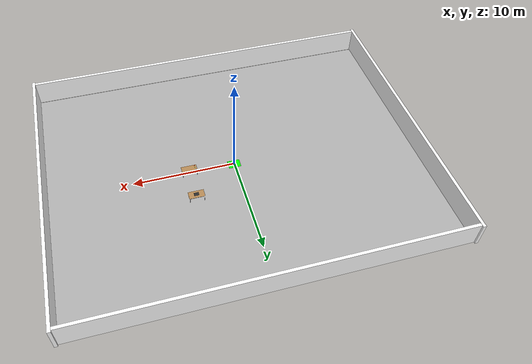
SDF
<sdf version="1.7">
 <world name="warehouse">
  <plugin filename="ignition-gazebo-physics-system" name="ignition::gazebo::systems::Physics"/>
  <plugin filename="ignition-gazebo-user-commands-system" name="ignition::gazebo::systems::UserCommands"/>
  <plugin filename="ignition-gazebo-scene-broadcaster-system" name="ignition::gazebo::systems::SceneBroadcaster"/>
  <plugin filename="ignition-gazebo-sensors-system" name="ignition::gazebo::systems::Sensors">
   <render_engine>ogre2</render_engine>
  </plugin>
  <scene>
   <ambient>0.50 0.50 0.50 1.0</ambient>
   <background>0.32 0.36 0.42 1.0</background>
   <shadows>true</shadows>
  </scene>
  <light type="directional" name="warehouse_key_light">
   <pose>0 0 18 0 0 0</pose>
   <diffuse>0.80 0.80 0.78 1.0</diffuse>
   <specular>0.10 0.10 0.10 1.0</specular>
   <direction>-0.30 0.20 -1.0</direction>
   <intensity>0.80</intensity>
  </light>
  <light type="directional" name="warehouse_fill_light">
   <pose>12 -10 14 0 0 0</pose>
   <diffuse>0.45 0.45 0.50 1.0</diffuse>
   <specular>0.05 0.05 0.05 1.0</specular>
   <direction>-0.55 0.45 -1.0</direction>
   <intensity>0.40</intensity>
  </light>
  <light type="point" name="pick_workbench_light">
   <pose>4.5 0.0 3.4 0 0 0</pose>
   <diffuse>0.90 0.90 0.85 1.0</diffuse>
   <specular>0.20 0.20 0.20 1.0</specular>
   <attenuation>0.0 0.55 0.08</attenuation>
   <intensity>0.90</intensity>
  </light>
  <light type="point" name="drop_off_table_light">
   <pose>4.5 3.2 3.4 0 0 0</pose>
   <diffuse>0.90 0.90 0.85 1.0</diffuse>
   <specular>0.20 0.20 0.20 1.0</specular>
   <attenuation>0.0 0.55 0.08</attenuation>
   <intensity>0.90</intensity>
  </light>
  <physics type="ode">
   <max_step_size>0.002</max_step_size>
   <real_time_factor>1.0</real_time_factor>
   <real_time_update_rate>500</real_time_update_rate>
  </physics>
  <model name="warehouse_slab">
   <static>true</static>
   <pose>0 0 -0.15 0 0 0</pose>
   <link name="slab">
    <collision name="slab_collision">
     <geometry><box><size>36.0 28.0 0.3</size></box></geometry>
     <surface><friction><ode><mu>0.9</mu><mu2>0.9</mu2></ode></friction></surface>
    </collision>
    <visual name="slab_visual">
     <geometry><box><size>36.0 28.0 0.3</size></box></geometry>
     <material>
      <ambient>0.3 0.3 0.3 1</ambient>
      <diffuse>0.7 0.7 0.7 1</diffuse>
      <specular>0.01 0.01 0.01 1</specular>
     </material>
    </visual>
   </link>
  </model>
  <model name="north_wall">
   <static>true</static>
   <link name="wall">
    <collision name="collision"><geometry><box><size>36.0 0.3 2.5</size></box></geometry></collision>
    <visual name="visual">
     <geometry><box><size>36.0 0.3 2.5</size></box></geometry>
     <material><ambient>1 1 1 1</ambient><diffuse>1 1 1 1</diffuse><specular>0.1 0.1 0.1 1</specular></material>
    </visual>
   </link>
   <pose>0 -14.2 1.25 0 0 0</pose>
  </model>
  <model name="south_wall">
   <static>true</static>
   <link name="wall">
    <collision name="collision"><geometry><box><size>36.0 0.3 2.5</size></box></geometry></collision>
    <visual name="visual">
     <geometry><box><size>36.0 0.3 2.5</size></box></geometry>
     <material><ambient>1 1 1 1</ambient><diffuse>1 1 1 1</diffuse><specular>0.1 0.1 0.1 1</specular></material>
    </visual>
   </link>
   <pose>0 14.2 1.25 0 0 0</pose>
  </model>
  <model name="west_wall">
   <static>true</static>
   <link name="wall">
    <collision name="collision"><geometry><box><size>0.3 29.0 2.5</size></box></geometry></collision>
    <visual name="visual">
     <geometry><box><size>0.3 29.0 2.5</size></box></geometry>
     <material><ambient>1 1 1 1</ambient><diffuse>1 1 1 1</diffuse><specular>0.1 0.1 0.1 1</specular></material>
    </visual>
   </link>
   <pose>-18.15 0 1.25 0 0 0</pose>
  </model>
  <model name="east_wall">
   <static>true</static>
   <link name="wall">
    <collision name="collision"><geometry><box><size>0.3 29.0 2.5</size></box></geometry></collision>
    <visual name="visual">
     <geometry><box><size>0.3 29.0 2.5</size></box></geometry>
     <material><ambient>1 1 1 1</ambient><diffuse>1 1 1 1</diffuse><specular>0.1 0.1 0.1 1</specular></material>
    </visual>
   </link>
   <pose>18.15 0 1.25 0 0 0</pose>
  </model>
  <model name="pick_workbench">
   <static>true</static>
   <pose>4.5 0 0 0 0 0</pose>
   <link name="link">
    <collision name="surface">
     <pose>0 0 0.585 0 0 0</pose>
     <geometry><box><size>1.5 0.8 0.03</size></box></geometry>
     <surface><friction><ode><mu>1.0</mu><mu2>1.0</mu2></ode></friction></surface>
    </collision>
    <visual name="surface_visual">
     <pose>0 0 0.585 0 0 0</pose>
     <geometry><box><size>1.5 0.8 0.03</size></box></geometry>
     <material>
      <ambient>0.42 0.31 0.19 1</ambient>
      <diffuse>0.72 0.55 0.34 1</diffuse>
      <specular>0.08 0.08 0.08 1</specular>
     </material>
    </visual>
    <collision name="front_left_leg">
     <pose>0.68 0.38 0.285 0 0 0</pose>
     <geometry><cylinder><radius>0.02</radius><length>0.57</length></cylinder></geometry>
    </collision>
    <visual name="front_left_leg_visual">
     <pose>0.68 0.38 0.285 0 0 0</pose>
     <geometry><cylinder><radius>0.02</radius><length>0.57</length></cylinder></geometry>
     <material>
      <ambient>0.22 0.22 0.24 1</ambient>
      <diffuse>0.45 0.46 0.50 1</diffuse>
      <specular>0.25 0.25 0.25 1</specular>
     </material>
    </visual>
    <collision name="front_right_leg">
     <pose>0.68 -0.38 0.285 0 0 0</pose>
     <geometry><cylinder><radius>0.02</radius><length>0.57</length></cylinder></geometry>
    </collision>
    <visual name="front_right_leg_visual">
     <pose>0.68 -0.38 0.285 0 0 0</pose>
     <geometry><cylinder><radius>0.02</radius><length>0.57</length></cylinder></geometry>
     <material>
      <ambient>0.22 0.22 0.24 1</ambient>
      <diffuse>0.45 0.46 0.50 1</diffuse>
      <specular>0.25 0.25 0.25 1</specular>
     </material>
    </visual>
    <collision name="back_left_leg">
     <pose>-0.68 0.38 0.285 0 0 0</pose>
     <geometry><cylinder><radius>0.02</radius><length>0.57</length></cylinder></geometry>
    </collision>
    <visual name="back_left_leg_visual">
     <pose>-0.68 0.38 0.285 0 0 0</pose>
     <geometry><cylinder><radius>0.02</radius><length>0.57</length></cylinder></geometry>
     <material>
      <ambient>0.22 0.22 0.24 1</ambient>
      <diffuse>0.45 0.46 0.50 1</diffuse>
      <specular>0.25 0.25 0.25 1</specular>
     </material>
    </visual>
    <collision name="back_right_leg">
     <pose>-0.68 -0.38 0.285 0 0 0</pose>
     <geometry><cylinder><radius>0.02</radius><length>0.57</length></cylinder></geometry>
    </collision>
    <visual name="back_right_leg_visual">
     <pose>-0.68 -0.38 0.285 0 0 0</pose>
     <geometry><cylinder><radius>0.02</radius><length>0.57</length></cylinder></geometry>
     <material>
      <ambient>0.22 0.22 0.24 1</ambient>
      <diffuse>0.45 0.46 0.50 1</diffuse>
      <specular>0.25 0.25 0.25 1</specular>
     </material>
    </visual>
   </link>
  </model>
  <model name="drop_off_table">
   <static>true</static>
   <pose>4.5 3.2 0 0 0 0</pose>
   <link name="link">
    <collision name="surface">
     <pose>0 0 0.585 0 0 0</pose>
     <geometry><box><size>1.5 0.8 0.03</size></box></geometry>
     <surface><friction><ode><mu>1.0</mu><mu2>1.0</mu2></ode></friction></surface>
    </collision>
    <visual name="surface_visual">
     <pose>0 0 0.585 0 0 0</pose>
     <geometry><box><size>1.5 0.8 0.03</size></box></geometry>
     <material>
      <ambient>0.42 0.31 0.19 1</ambient>
      <diffuse>0.72 0.55 0.34 1</diffuse>
      <specular>0.08 0.08 0.08 1</specular>
     </material>
    </visual>
    <collision name="front_left_leg">
     <pose>0.68 0.38 0.285 0 0 0</pose>
     <geometry><cylinder><radius>0.02</radius><length>0.57</length></cylinder></geometry>
    </collision>
    <visual name="front_left_leg_visual">
     <pose>0.68 0.38 0.285 0 0 0</pose>
     <geometry><cylinder><radius>0.02</radius><length>0.57</length></cylinder></geometry>
     <material>
      <ambient>0.22 0.22 0.24 1</ambient>
      <diffuse>0.45 0.46 0.50 1</diffuse>
      <specular>0.25 0.25 0.25 1</specular>
     </material>
    </visual>
    <collision name="front_right_leg">
     <pose>0.68 -0.38 0.285 0 0 0</pose>
     <geometry><cylinder><radius>0.02</radius><length>0.57</length></cylinder></geometry>
    </collision>
    <visual name="front_right_leg_visual">
     <pose>0.68 -0.38 0.285 0 0 0</pose>
     <geometry><cylinder><radius>0.02</radius><length>0.57</length></cylinder></geometry>
     <material>
      <ambient>0.22 0.22 0.24 1</ambient>
      <diffuse>0.45 0.46 0.50 1</diffuse>
      <specular>0.25 0.25 0.25 1</specular>
     </material>
    </visual>
    <collision name="back_left_leg">
     <pose>-0.68 0.38 0.285 0 0 0</pose>
     <geometry><cylinder><radius>0.02</radius><length>0.57</length></cylinder></geometry>
    </collision>
    <visual name="back_left_leg_visual">
     <pose>-0.68 0.38 0.285 0 0 0</pose>
     <geometry><cylinder><radius>0.02</radius><length>0.57</length></cylinder></geometry>
     <material>
      <ambient>0.22 0.22 0.24 1</ambient>
      <diffuse>0.45 0.46 0.50 1</diffuse>
      <specular>0.25 0.25 0.25 1</specular>
     </material>
    </visual>
    <collision name="back_right_leg">
     <pose>-0.68 -0.38 0.285 0 0 0</pose>
     <geometry><cylinder><radius>0.02</radius><length>0.57</length></cylinder></geometry>
    </collision>
    <visual name="back_right_leg_visual">
     <pose>-0.68 -0.38 0.285 0 0 0</pose>
     <geometry><cylinder><radius>0.02</radius><length>0.57</length></cylinder></geometry>
     <material>
      <ambient>0.22 0.22 0.24 1</ambient>
      <diffuse>0.45 0.46 0.50 1</diffuse>
      <specular>0.25 0.25 0.25 1</specular>
     </material>
    </visual>
   </link>
  </model>
  <model name="drop_zone_marker">
   <static>true</static>
   <link name="marker">
    <visual name="visual">
     <geometry><box><size>0.45 0.35 0.005</size></box></geometry>
     <material>
      <ambient>0.175 0.175 0.175 1</ambient>
      <diffuse>0.175 0.175 0.175 1</diffuse>
      <specular>0.175 0.175 0.175 1</specular>
     </material>
    </visual>
   </link>
   <pose>4.5 3.2 0.6075 0 0 0</pose>
  </model>
  <model name="target_ball_red">
   <static>false</static>
   <link name="body">
    <inertial>
     <mass>0.2</mass>
     <inertia>
      <ixx>0.0000871</ixx>
      <ixy>0.0</ixy>
      <ixz>0.0</ixz>
      <iyy>0.0000871</iyy>
      <iyz>0.0</iyz>
      <izz>0.0000871</izz>
     </inertia>
    </inertial>
    <collision name="collision">
     <geometry><sphere><radius>0.033</radius></sphere></geometry>
     <surface><friction><ode><mu>1.0</mu><mu2>1.0</mu2></ode></friction></surface>
    </collision>
    <visual name="visual">
     <geometry><sphere><radius>0.033</radius></sphere></geometry>
     <material><ambient>1 0 0 1</ambient><diffuse>1 0 0 1</diffuse><specular>0.1 0.1 0.1 1</specular></material>
    </visual>
   </link>
   <pose>3.92 -0.26 0.6330 0 0 0</pose>
  </model>
  <model name="target_ball_blue">
   <static>false</static>
   <link name="body">
    <inertial>
     <mass>0.2</mass>
     <inertia>
      <ixx>0.0000871</ixx>
      <ixy>0.0</ixy>
      <ixz>0.0</ixz>
      <iyy>0.0000871</iyy>
      <iyz>0.0</iyz>
      <izz>0.0000871</izz>
     </inertia>
    </inertial>
    <collision name="collision">
     <geometry><sphere><radius>0.033</radius></sphere></geometry>
     <surface><friction><ode><mu>1.0</mu><mu2>1.0</mu2></ode></friction></surface>
    </collision>
    <visual name="visual">
     <geometry><sphere><radius>0.033</radius></sphere></geometry>
     <material><ambient>0 0 1 1</ambient><diffuse>0 0 1 1</diffuse><specular>0.1 0.1 0.1 1</specular></material>
    </visual>
   </link>
   <pose>3.92 0.26 0.6330 0 0 0</pose>
  </model>
  <model name="target_ball_green">
   <static>false</static>
   <link name="body">
    <inertial>
     <mass>0.2</mass>
     <inertia>
      <ixx>0.0000871</ixx>
      <ixy>0.0</ixy>
      <ixz>0.0</ixz>
      <iyy>0.0000871</iyy>
      <iyz>0.0</iyz>
      <izz>0.0000871</izz>
     </inertia>
    </inertial>
    <collision name="collision">
     <geometry><sphere><radius>0.033</radius></sphere></geometry>
     <surface><friction><ode><mu>1.0</mu><mu2>1.0</mu2></ode></friction></surface>
    </collision>
    <visual name="visual">
     <geometry><sphere><radius>0.033</radius></sphere></geometry>
     <material><ambient>0 1 0 1</ambient><diffuse>0 1 0 1</diffuse><specular>0.1 0.1 0.1 1</specular></material>
    </visual>
   </link>
   <pose>3.92 0.00 0.6330 0 0 0</pose>
  </model>
  <model name="home_pose_marker">
   <static>true</static>
   <link name="marker">
    <visual name="visual">
     <geometry><box><size>1.2 0.9 0.01</size></box></geometry>
     <material><ambient>0 1 0 1</ambient><diffuse>0 1 0 1</diffuse><specular>0.1 0.1 0.1 1</specular></material>
    </visual>
   </link>
   <pose>0 0 0.005 0 0 0</pose>
  </model>
  <model name="demo_camera">
   <static>true</static>
   <pose>0.5 1.6 3.0 0 0.54 0</pose>
   <link name="link">
    <sensor name="demo_camera" type="camera">
     <update_rate>10</update_rate>
     <always_on>1</always_on>
     <topic>demo_camera/image_raw</topic>
     <ignition_frame_id>demo_camera_link</ignition_frame_id>
     <camera>
      <horizontal_fov>1.4</horizontal_fov>
      <image><width>1280</width><height>720</height><format>R8G8B8</format></image>
      <clip><near>0.1</near><far>100</far></clip>
     </camera>
    </sensor>
   </link>
  </model>
  <model name="phase4_camera">
   <static>true</static>
   <link name="phase4_camera_link">
    <sensor name="phase4_camera_sensor" type="camera">
     <always_on>true</always_on>
     <update_rate>15</update_rate>
     <topic>phase4_camera/image_raw</topic>
     <ignition_frame_id>phase4_camera_link</ignition_frame_id>
     <camera>
      <horizontal_fov>1.047</horizontal_fov>
      <image><width>1280</width><height>720</height><format>R8G8B8</format></image>
      <clip><near>0.05</near><far>100.0</far></clip>
     </camera>
    </sensor>
   </link>
   <pose>-2.4 -2.4 1.35 0 0.25921 0.7854</pose>
  </model>
 </world>
</sdf>
